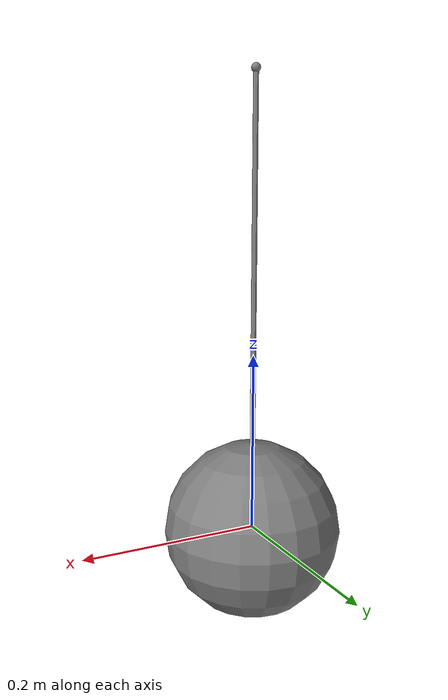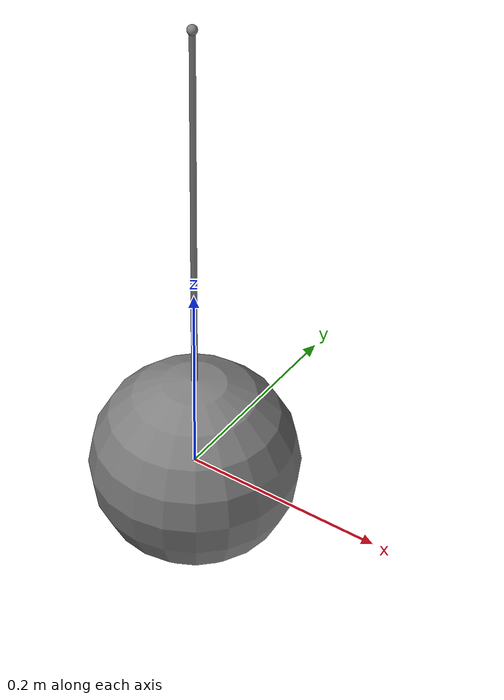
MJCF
<mujoco model="test">
                <worldbody>
                    <body name="link">
                        <joint name="j1" type="hinge"/>
                        <site name="s1" pos="0 0 0"/>
                        <site name="s2" pos="0 0 0.5"/>
                        <geom type="sphere" size="0.1"/>
                    </body>
                </worldbody>
                <tendon>
                    <spatial name="t1">
                        <site site="s1"/>
                        <site site="s2"/>
                    </spatial>
                    <fixed name="t2">
                        <joint joint="j1" coef="2"/>
                    </fixed>
                </tendon>
            </mujoco>
